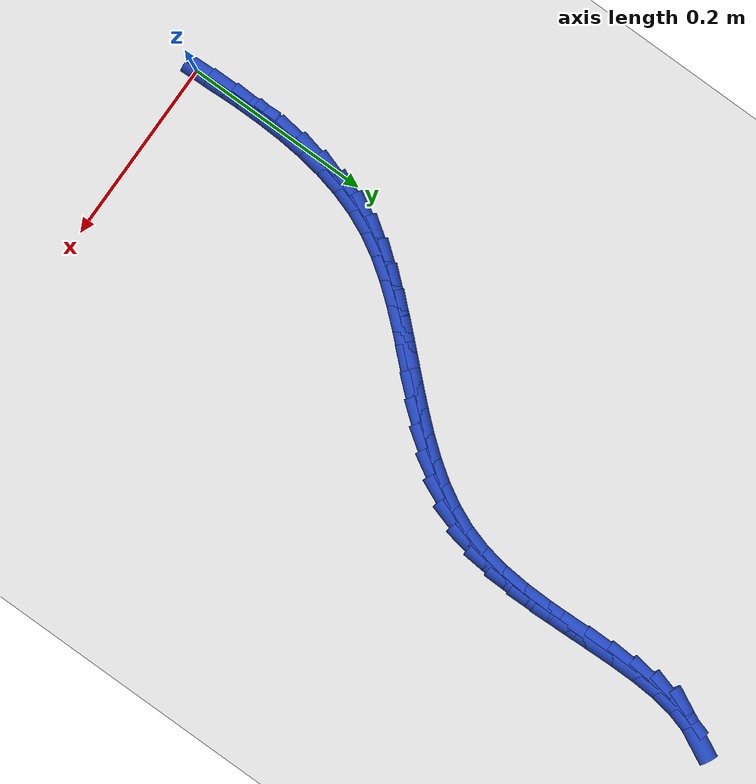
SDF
<sdf version="1.6">
 <world name="default">
  <model name="ground_plane">
   <static>1</static>
   <link name="link">
    <collision name="collision">
     <geometry><plane><normal>0 0 1</normal><size>100 100</size></plane></geometry>
     <surface><friction><ode><mu>100</mu><mu2>50</mu2></ode></friction></surface>
    </collision>
    <visual name="visual">
     <cast_shadows>0</cast_shadows>
     <geometry><plane><normal>0 0 1</normal><size>100 100</size></plane></geometry>
     <material>
      <script><uri>file://media/materials/scripts/gazebo.material</uri><name>Gazebo/WhiteGlow</name></script>
     </material>
    </visual>
   </link>
  </model>
  <model name="line">
   <link name="link_1">
    <pose>-0.0014851051270144866 0.026909461180126652 0.01 0 1.57 -1.5373575224814657</pose>
    <collision name="collision">
     <geometry><cylinder><radius>0.01</radius><length>0.08</length></cylinder></geometry>
    </collision>
    <visual name="visual">
     <material>
      <script><name>Gazebo/Blue</name><uri>file://media/materials/scripts/gazebo.material</uri></script>
     </material>
     <geometry><cylinder><radius>0.01</radius><length>0.08</length></cylinder></geometry>
    </visual>
   </link>
   <link name="link_2">
    <pose>-0.002392326421066504 0.05403014177466341 0.01 0 1.57 -1.568052936660617</pose>
    <collision name="collision">
     <geometry><cylinder><radius>0.01</radius><length>0.08</length></cylinder></geometry>
    </collision>
    <visual name="visual">
     <material>
      <script><name>Gazebo/Blue</name><uri>file://media/materials/scripts/gazebo.material</uri></script>
     </material>
     <geometry><cylinder><radius>0.01</radius><length>0.08</length></cylinder></geometry>
    </visual>
   </link>
   <link name="link_3">
    <pose>-0.0024668079049037423 0.08117950564112851 0.01 0 1.57 1.5332849393124606</pose>
    <collision name="collision">
     <geometry><cylinder><radius>0.01</radius><length>0.08</length></cylinder></geometry>
    </collision>
    <visual name="visual">
     <material>
      <script><name>Gazebo/Blue</name><uri>file://media/materials/scripts/gazebo.material</uri></script>
     </material>
     <geometry><cylinder><radius>0.01</radius><length>0.08</length></cylinder></geometry>
    </visual>
   </link>
   <link name="link_4">
    <pose>-0.0014536936012738838 0.10817501663704009 0.01 0 1.57 1.4826664757514716</pose>
    <collision name="collision">
     <geometry><cylinder><radius>0.01</radius><length>0.08</length></cylinder></geometry>
    </collision>
    <visual name="visual">
     <material>
      <script><name>Gazebo/Blue</name><uri>file://media/materials/scripts/gazebo.material</uri></script>
     </material>
     <geometry><cylinder><radius>0.01</radius><length>0.08</length></cylinder></geometry>
    </visual>
   </link>
   <link name="link_5">
    <pose>0.0009018724670753833 0.13483413861991633 0.01 0 1.57 1.4207151878187974</pose>
    <collision name="collision">
     <geometry><cylinder><radius>0.01</radius><length>0.08</length></cylinder></geometry>
    </collision>
    <visual name="visual">
     <material>
      <script><name>Gazebo/Blue</name><uri>file://media/materials/scripts/gazebo.material</uri></script>
     </material>
     <geometry><cylinder><radius>0.01</radius><length>0.08</length></cylinder></geometry>
    </visual>
   </link>
   <link name="link_6">
    <pose>0.004854746277396374 0.16097433544727544 0.01 0 1.57 1.346441234485536</pose>
    <collision name="collision">
     <geometry><cylinder><radius>0.01</radius><length>0.08</length></cylinder></geometry>
    </collision>
    <visual name="visual">
     <material>
      <script><name>Gazebo/Blue</name><uri>file://media/materials/scripts/gazebo.material</uri></script>
     </material>
     <geometry><cylinder><radius>0.01</radius><length>0.08</length></cylinder></geometry>
    </visual>
   </link>
   <link name="link_7">
    <pose>0.010659783806941402 0.18641307097663556 0.01 0 1.57 1.2590798046489646</pose>
    <collision name="collision">
     <geometry><cylinder><radius>0.01</radius><length>0.08</length></cylinder></geometry>
    </collision>
    <visual name="visual">
     <material>
      <script><name>Gazebo/Blue</name><uri>file://media/materials/scripts/gazebo.material</uri></script>
     </material>
     <geometry><cylinder><radius>0.01</radius><length>0.08</length></cylinder></geometry>
    </visual>
   </link>
   <link name="link_8">
    <pose>0.018571841032962777 0.21096780906551488 0.01 0 1.57 1.158487399252062</pose>
    <collision name="collision">
     <geometry><cylinder><radius>0.01</radius><length>0.08</length></cylinder></geometry>
    </collision>
    <visual name="visual">
     <material>
      <script><name>Gazebo/Blue</name><uri>file://media/materials/scripts/gazebo.material</uri></script>
     </material>
     <geometry><cylinder><radius>0.01</radius><length>0.08</length></cylinder></geometry>
    </visual>
   </link>
   <link name="link_9">
    <pose>0.02884522732654676 0.23445632786346263 0.01 0 1.57 1.0538312243008625</pose>
    <collision name="collision">
     <geometry><cylinder><radius>0.01</radius><length>0.08</length></cylinder></geometry>
    </collision>
    <visual name="visual">
     <material>
      <script><name>Gazebo/Blue</name><uri>file://media/materials/scripts/gazebo.material</uri></script>
     </material>
     <geometry><cylinder><radius>0.01</radius><length>0.08</length></cylinder></geometry>
    </visual>
   </link>
   <link name="link_10">
    <pose>0.04154985769534978 0.25680243008141457 0.01 0 1.57 0.9669070061304351</pose>
    <collision name="collision">
     <geometry><cylinder><radius>0.01</radius><length>0.08</length></cylinder></geometry>
    </collision>
    <visual name="visual">
     <material>
      <script><name>Gazebo/Blue</name><uri>file://media/materials/scripts/gazebo.material</uri></script>
     </material>
     <geometry><cylinder><radius>0.01</radius><length>0.08</length></cylinder></geometry>
    </visual>
   </link>
   <link name="link_11">
    <pose>0.056304039669238616 0.2781895873478418 0.01 0 1.57 0.9009876681101289</pose>
    <collision name="collision">
     <geometry><cylinder><radius>0.01</radius><length>0.08</length></cylinder></geometry>
    </collision>
    <visual name="visual">
     <material>
      <script><name>Gazebo/Blue</name><uri>file://media/materials/scripts/gazebo.material</uri></script>
     </material>
     <geometry><cylinder><radius>0.01</radius><length>0.08</length></cylinder></geometry>
    </visual>
   </link>
   <link name="link_12">
    <pose>0.07265821650890927 0.29884029243719196 0.01 0 1.57 0.8552110789631999</pose>
    <collision name="collision">
     <geometry><cylinder><radius>0.01</radius><length>0.08</length></cylinder></geometry>
    </collision>
    <visual name="visual">
     <material>
      <script><name>Gazebo/Blue</name><uri>file://media/materials/scripts/gazebo.material</uri></script>
     </material>
     <geometry><cylinder><radius>0.01</radius><length>0.08</length></cylinder></geometry>
    </visual>
   </link>
   <link name="link_13">
    <pose>0.09016283147505781 0.3189770381239125 0.01 0 1.57 0.8284661091328717</pose>
    <collision name="collision">
     <geometry><cylinder><radius>0.01</radius><length>0.08</length></cylinder></geometry>
    </collision>
    <visual name="visual">
     <material>
      <script><name>Gazebo/Blue</name><uri>file://media/materials/scripts/gazebo.material</uri></script>
     </material>
     <geometry><cylinder><radius>0.01</radius><length>0.08</length></cylinder></geometry>
    </visual>
   </link>
   <link name="link_14">
    <pose>0.10836832782838036 0.3388223171824514 0.01 0 1.57 0.8198960152028433</pose>
    <collision name="collision">
     <geometry><cylinder><radius>0.01</radius><length>0.08</length></cylinder></geometry>
    </collision>
    <visual name="visual">
     <material>
      <script><name>Gazebo/Blue</name><uri>file://media/materials/scripts/gazebo.material</uri></script>
     </material>
     <geometry><cylinder><radius>0.01</radius><length>0.08</length></cylinder></geometry>
    </visual>
   </link>
   <link name="link_15">
    <pose>0.12682514882957285 0.358598622387256 0.01 0 1.57 0.8291331446700129</pose>
    <collision name="collision">
     <geometry><cylinder><radius>0.01</radius><length>0.08</length></cylinder></geometry>
    </collision>
    <visual name="visual">
     <material>
      <script><name>Gazebo/Blue</name><uri>file://media/materials/scripts/gazebo.material</uri></script>
     </material>
     <geometry><cylinder><radius>0.01</radius><length>0.08</length></cylinder></geometry>
    </visual>
   </link>
   <link name="link_16">
    <pose>0.14508373773933134 0.37852844651277384 0.01 0 1.57 0.8563567514031817</pose>
    <collision name="collision">
     <geometry><cylinder><radius>0.01</radius><length>0.08</length></cylinder></geometry>
    </collision>
    <visual name="visual">
     <material>
      <script><name>Gazebo/Blue</name><uri>file://media/materials/scripts/gazebo.material</uri></script>
     </material>
     <geometry><cylinder><radius>0.01</radius><length>0.08</length></cylinder></geometry>
    </visual>
   </link>
   <link name="link_17">
    <pose>0.162694537818352 0.39883428233345286 0.01 0 1.57 0.9022114575777578</pose>
    <collision name="collision">
     <geometry><cylinder><radius>0.01</radius><length>0.08</length></cylinder></geometry>
    </collision>
    <visual name="visual">
     <material>
      <script><name>Gazebo/Blue</name><uri>file://media/materials/scripts/gazebo.material</uri></script>
     </material>
     <geometry><cylinder><radius>0.01</radius><length>0.08</length></cylinder></geometry>
    </visual>
   </link>
   <link name="link_18">
    <pose>0.17920799232733065 0.41973862262374023 0.01 0 1.57 0.9675599634669823</pose>
    <collision name="collision">
     <geometry><cylinder><radius>0.01</radius><length>0.08</length></cylinder></geometry>
    </collision>
    <visual name="visual">
     <material>
      <script><name>Gazebo/Blue</name><uri>file://media/materials/scripts/gazebo.material</uri></script>
     </material>
     <geometry><cylinder><radius>0.01</radius><length>0.08</length></cylinder></geometry>
    </visual>
   </link>
   <link name="link_19">
    <pose>0.19417454452696353 0.44146396015808387 0.01 0 1.57 1.0529976283603883</pose>
    <collision name="collision">
     <geometry><cylinder><radius>0.01</radius><length>0.08</length></cylinder></geometry>
    </collision>
    <visual name="visual">
     <material>
      <script><name>Gazebo/Blue</name><uri>file://media/materials/scripts/gazebo.material</uri></script>
     </material>
     <geometry><cylinder><radius>0.01</radius><length>0.08</length></cylinder></geometry>
    </visual>
   </link>
   <link name="link_20">
    <pose>0.2071446376779466 0.46423278771093135 0.01 0 1.57 1.1580769425891473</pose>
    <collision name="collision">
     <geometry><cylinder><radius>0.01</radius><length>0.08</length></cylinder></geometry>
    </collision>
    <visual name="visual">
     <material>
      <script><name>Gazebo/Blue</name><uri>file://media/materials/scripts/gazebo.material</uri></script>
     </material>
     <geometry><cylinder><radius>0.01</radius><length>0.08</length></cylinder></geometry>
    </visual>
   </link>
   <link name="link_21">
    <pose>0.217668715040976 0.48826759805673037 0.01 0 1.57 1.2801264135120118</pose>
    <collision name="collision">
     <geometry><cylinder><radius>0.01</radius><length>0.08</length></cylinder></geometry>
    </collision>
    <visual name="visual">
     <material>
      <script><name>Gazebo/Blue</name><uri>file://media/materials/scripts/gazebo.material</uri></script>
     </material>
     <geometry><cylinder><radius>0.01</radius><length>0.08</length></cylinder></geometry>
    </visual>
   </link>
   <link name="link_22">
    <pose>0.22530283574739954 0.5137876116351567 0.01 0 1.57 1.3988331664665183</pose>
    <collision name="collision">
     <geometry><cylinder><radius>0.01</radius><length>0.08</length></cylinder></geometry>
    </collision>
    <visual name="visual">
     <material>
      <script><name>Gazebo/Blue</name><uri>file://media/materials/scripts/gazebo.material</uri></script>
     </material>
     <geometry><cylinder><radius>0.01</radius><length>0.08</length></cylinder></geometry>
    </visual>
   </link>
   <link name="link_23">
    <pose>0.22999179488485705 0.5407855347323979 0.01 0 1.57 1.4883130044301487</pose>
    <collision name="collision">
     <geometry><cylinder><radius>0.01</radius><length>0.08</length></cylinder></geometry>
    </collision>
    <visual name="visual">
     <material>
      <script><name>Gazebo/Blue</name><uri>file://media/materials/scripts/gazebo.material</uri></script>
     </material>
     <geometry><cylinder><radius>0.01</radius><length>0.08</length></cylinder></geometry>
    </visual>
   </link>
   <link name="link_24">
    <pose>0.23231475568571194 0.5688844310508364 0.01 0 1.57 1.5501457131390552</pose>
    <collision name="collision">
     <geometry><cylinder><radius>0.01</radius><length>0.08</length></cylinder></geometry>
    </collision>
    <visual name="visual">
     <material>
      <script><name>Gazebo/Blue</name><uri>file://media/materials/scripts/gazebo.material</uri></script>
     </material>
     <geometry><cylinder><radius>0.01</radius><length>0.08</length></cylinder></geometry>
    </visual>
   </link>
   <link name="link_25">
    <pose>0.2329093479402196 0.5976732961737259 0.01 0 1.57 -1.553729406542433</pose>
    <collision name="collision">
     <geometry><cylinder><radius>0.01</radius><length>0.08</length></cylinder></geometry>
    </collision>
    <visual name="visual">
     <material>
      <script><name>Gazebo/Blue</name><uri>file://media/materials/scripts/gazebo.material</uri></script>
     </material>
     <geometry><cylinder><radius>0.01</radius><length>0.08</length></cylinder></geometry>
    </visual>
   </link>
   <link name="link_26">
    <pose>0.2324132014386355 0.6267411256843207 0.01 0 1.57 -1.5380025039007692</pose>
    <collision name="collision">
     <geometry><cylinder><radius>0.01</radius><length>0.08</length></cylinder></geometry>
    </collision>
    <visual name="visual">
     <material>
      <script><name>Gazebo/Blue</name><uri>file://media/materials/scripts/gazebo.material</uri></script>
     </material>
     <geometry><cylinder><radius>0.01</radius><length>0.08</length></cylinder></geometry>
    </visual>
   </link>
   <link name="link_27">
    <pose>0.2314639459712151 0.6556769151658748 0.01 0 1.57 -1.5438686804115205</pose>
    <collision name="collision">
     <geometry><cylinder><radius>0.01</radius><length>0.08</length></cylinder></geometry>
    </collision>
    <visual name="visual">
     <material>
      <script><name>Gazebo/Blue</name><uri>file://media/materials/scripts/gazebo.material</uri></script>
     </material>
     <geometry><cylinder><radius>0.01</radius><length>0.08</length></cylinder></geometry>
    </visual>
   </link>
   <link name="link_28">
    <pose>0.23069921132821403 0.6840696602016425 0.01 0 1.57 1.5687038116290828</pose>
    <collision name="collision">
     <geometry><cylinder><radius>0.01</radius><length>0.08</length></cylinder></geometry>
    </collision>
    <visual name="visual">
     <material>
      <script><name>Gazebo/Blue</name><uri>file://media/materials/scripts/gazebo.material</uri></script>
     </material>
     <geometry><cylinder><radius>0.01</radius><length>0.08</length></cylinder></geometry>
    </visual>
   </link>
   <link name="link_29">
    <pose>0.2307566272998876 0.7115083563748775 0.01 0 1.57 1.5126729770589935</pose>
    <collision name="collision">
     <geometry><cylinder><radius>0.01</radius><length>0.08</length></cylinder></geometry>
    </collision>
    <visual name="visual">
     <material>
      <script><name>Gazebo/Blue</name><uri>file://media/materials/scripts/gazebo.material</uri></script>
     </material>
     <geometry><cylinder><radius>0.01</radius><length>0.08</length></cylinder></geometry>
    </visual>
   </link>
   <link name="link_30">
    <pose>0.23227382367649135 0.737581999268834 0.01 0 1.57 1.4231153753150907</pose>
    <collision name="collision">
     <geometry><cylinder><radius>0.01</radius><length>0.08</length></cylinder></geometry>
    </collision>
    <visual name="visual">
     <material>
      <script><name>Gazebo/Blue</name><uri>file://media/materials/scripts/gazebo.material</uri></script>
     </material>
     <geometry><cylinder><radius>0.01</radius><length>0.08</length></cylinder></geometry>
    </visual>
   </link>
   <link name="link_31">
    <pose>0.23588843024828074 0.7618795844667661 0.01 0 1.57 1.2911443324672314</pose>
    <collision name="collision">
     <geometry><cylinder><radius>0.01</radius><length>0.08</length></cylinder></geometry>
    </collision>
    <visual name="visual">
     <material>
      <script><name>Gazebo/Blue</name><uri>file://media/materials/scripts/gazebo.material</uri></script>
     </material>
     <geometry><cylinder><radius>0.01</radius><length>0.08</length></cylinder></geometry>
    </visual>
   </link>
   <link name="link_32">
    <pose>0.2422380768055113 0.7839901075519278 0.01 0 1.57 1.1085400552464884</pose>
    <collision name="collision">
     <geometry><cylinder><radius>0.01</radius><length>0.08</length></cylinder></geometry>
    </collision>
    <visual name="visual">
     <material>
      <script><name>Gazebo/Blue</name><uri>file://media/materials/scripts/gazebo.material</uri></script>
     </material>
     <geometry><cylinder><radius>0.01</radius><length>0.08</length></cylinder></geometry>
    </visual>
   </link>
   <link name="link_271">
    <pose>-0.0015267593300666423 0.02695403886552918 0.01 0 1.57 -1.5271244526215078</pose>
    <collision name="collision">
     <geometry><cylinder><radius>0.01</radius><length>0.08</length></cylinder></geometry>
    </collision>
    <visual name="visual">
     <material>
      <script><name>Gazebo/Blue</name><uri>file://media/materials/scripts/gazebo.material</uri></script>
     </material>
     <geometry><cylinder><radius>0.01</radius><length>0.08</length></cylinder></geometry>
    </visual>
   </link>
   <link name="link_272">
    <pose>-0.0027255600454836096 0.0543867632578807 0.01 0 1.57 -1.5207238163350603</pose>
    <collision name="collision">
     <geometry><cylinder><radius>0.01</radius><length>0.08</length></cylinder></geometry>
    </collision>
    <visual name="visual">
     <material>
      <script><name>Gazebo/Blue</name><uri>file://media/materials/scripts/gazebo.material</uri></script>
     </material>
     <geometry><cylinder><radius>0.01</radius><length>0.08</length></cylinder></geometry>
    </visual>
   </link>
  </model>
 </world>
</sdf>
